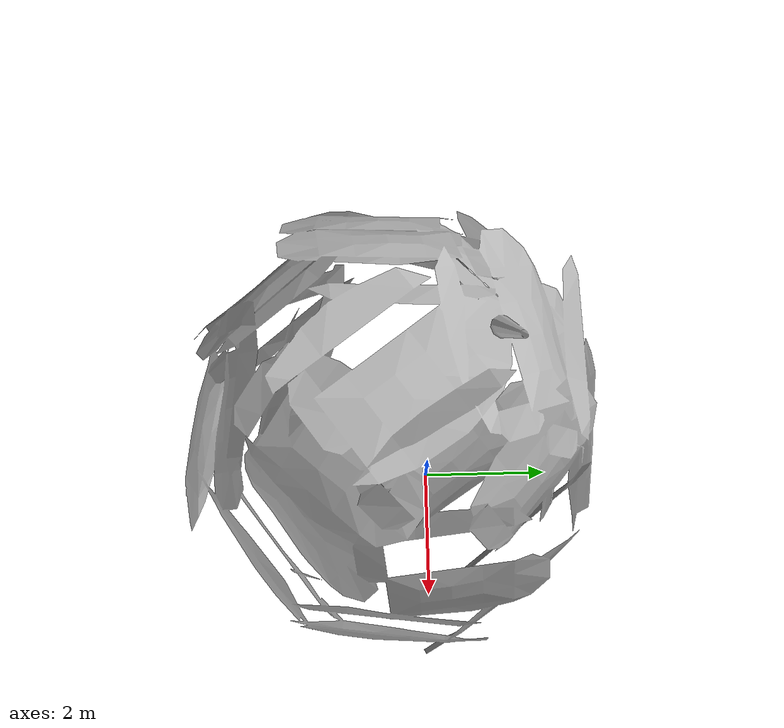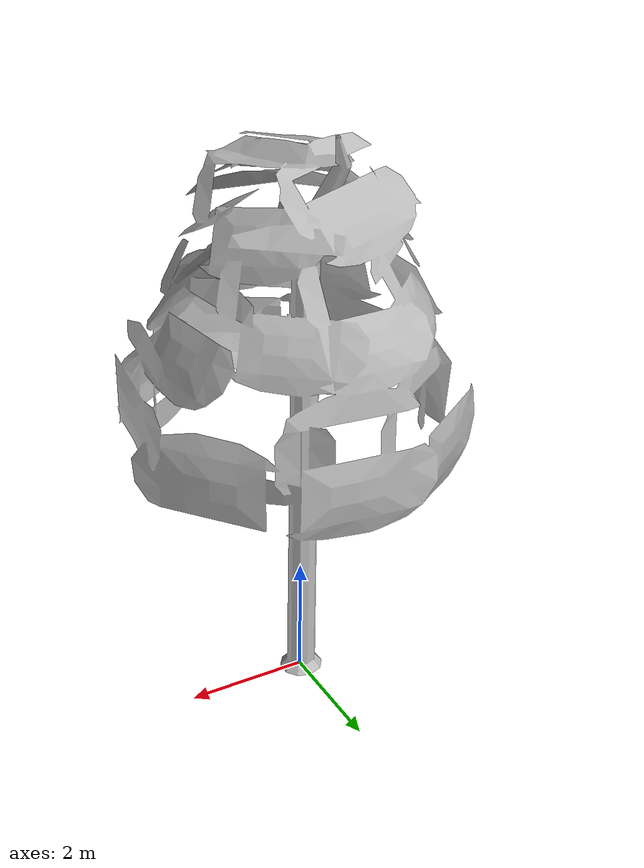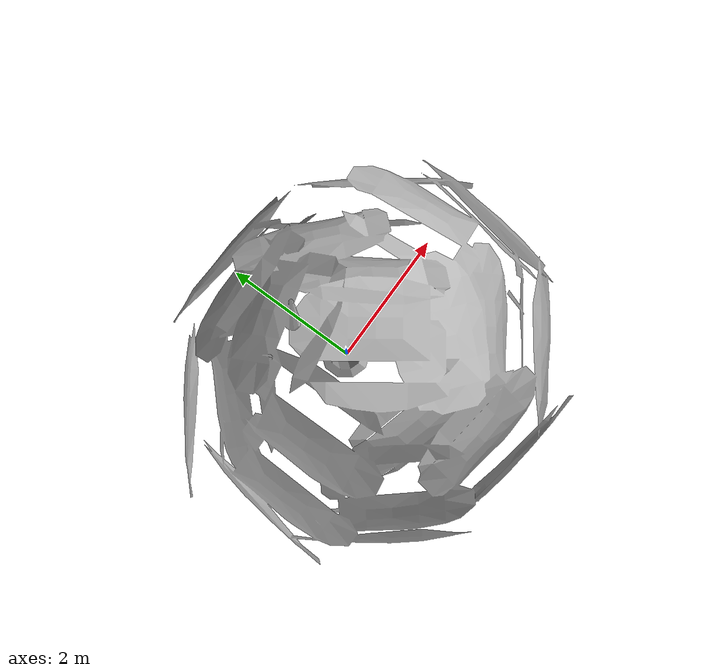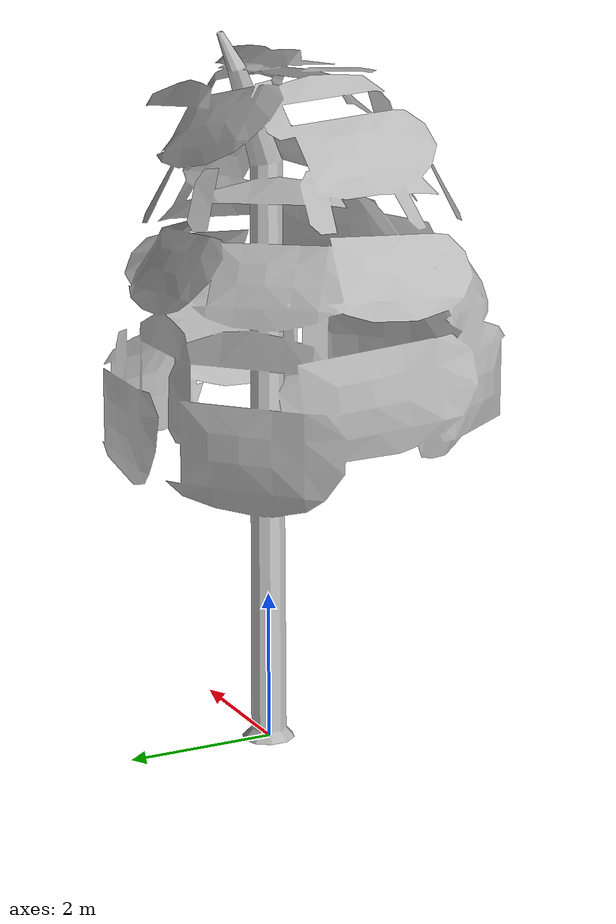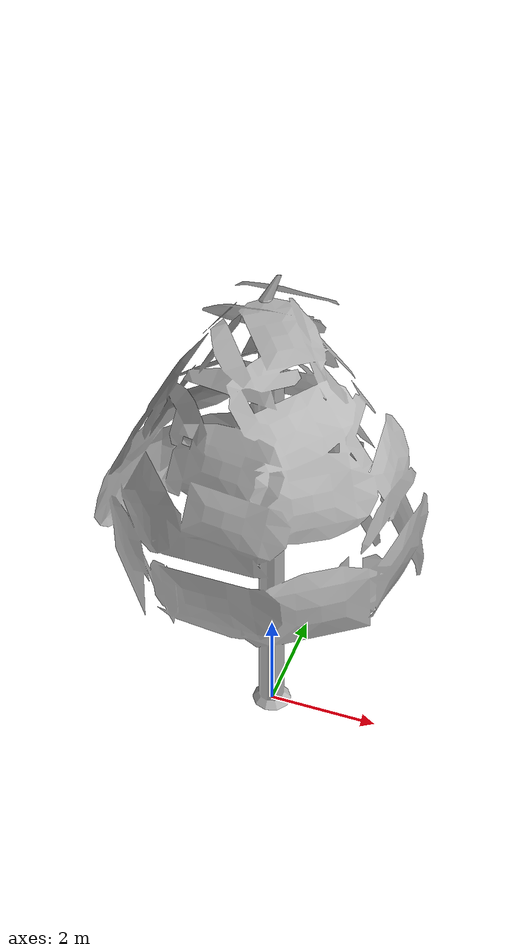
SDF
<?xml version='1.0'?>
<sdf version='1.4'>
  <model name="Tree_3">
    <static>true</static>
    <pose>0 0 0 0 0 0</pose>

    <link name="Tree_3">
      <visual name="Tree_3">
        <geometry>
          <mesh>
            <uri>model://Tree_3/Tree.dae</uri>
          </mesh>
        </geometry>
      </visual>
      <collision name="Tree_3">
        <geometry>
          <mesh>
            <uri>model://Tree_3/Tree.dae</uri>
          </mesh>
        </geometry>
      </collision>
    </link>

  </model>
</sdf>
